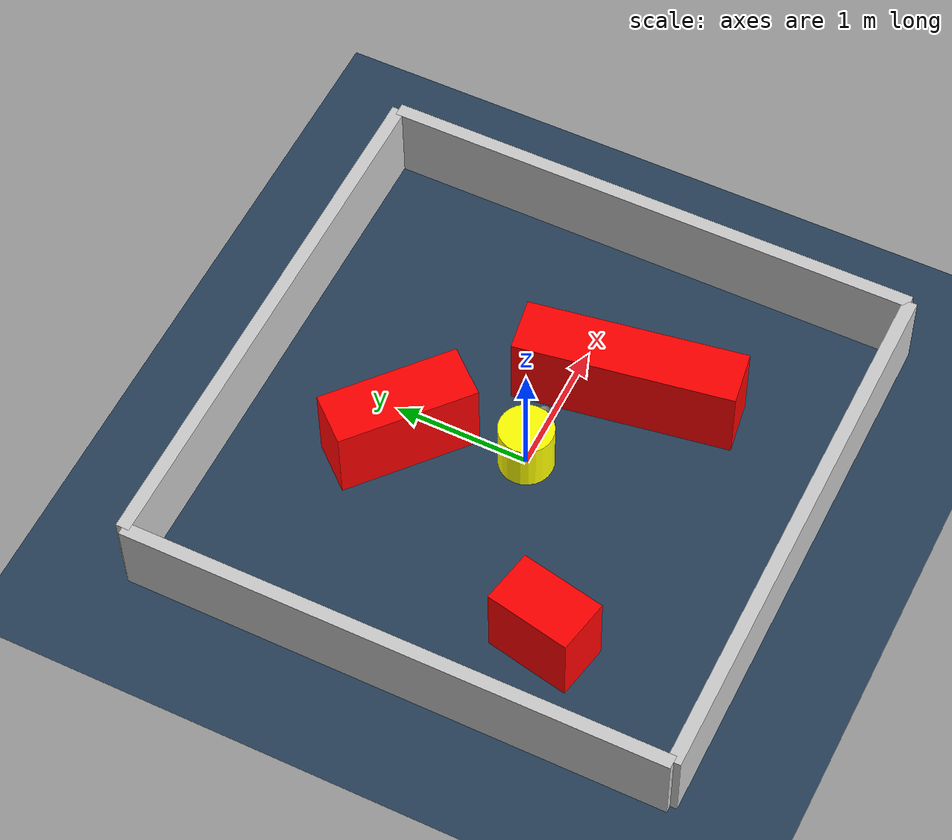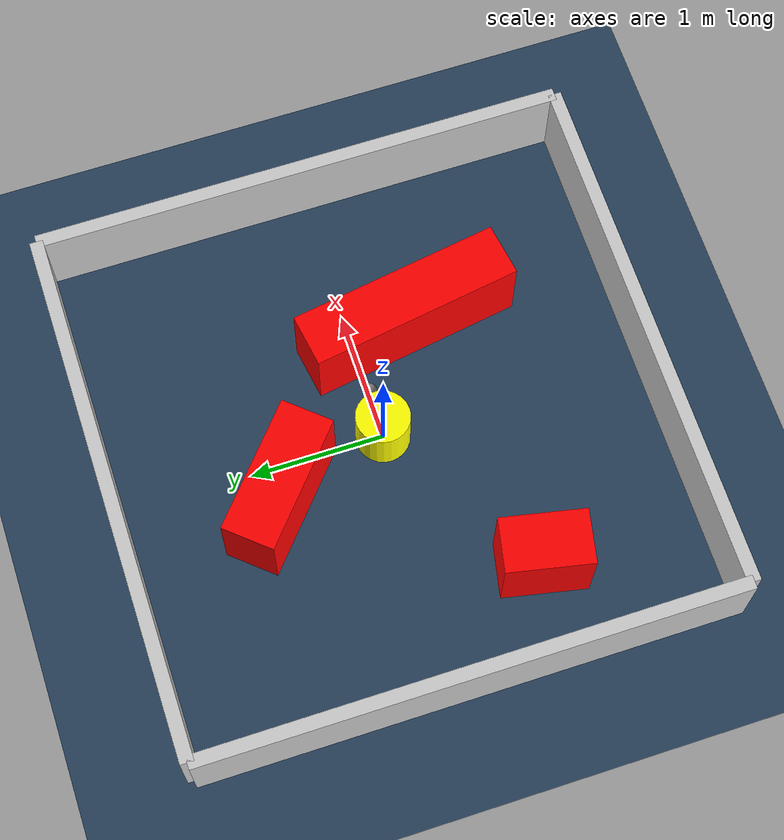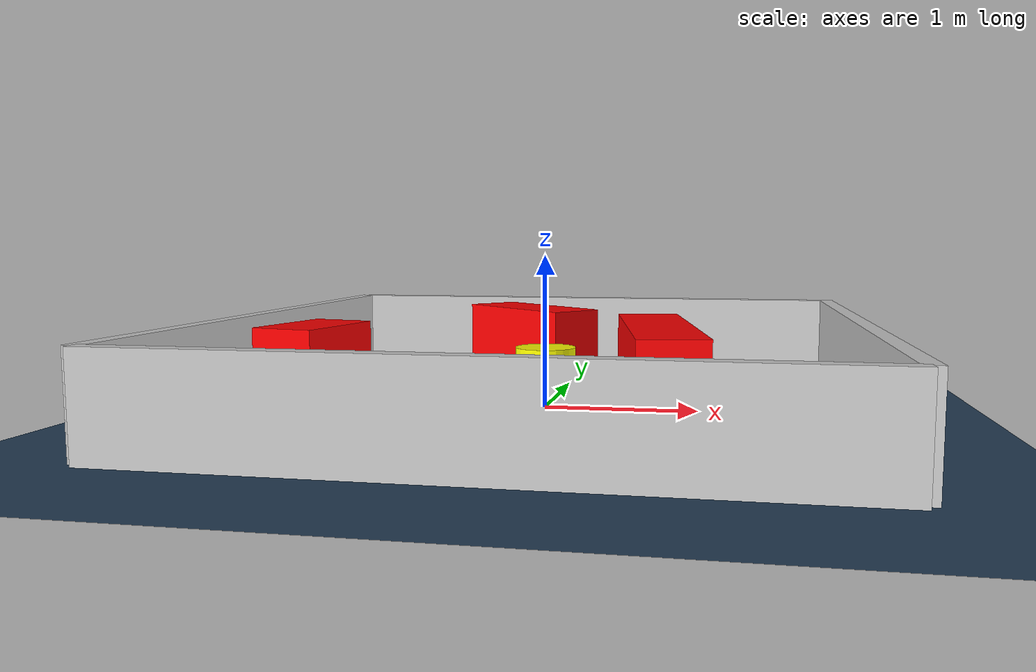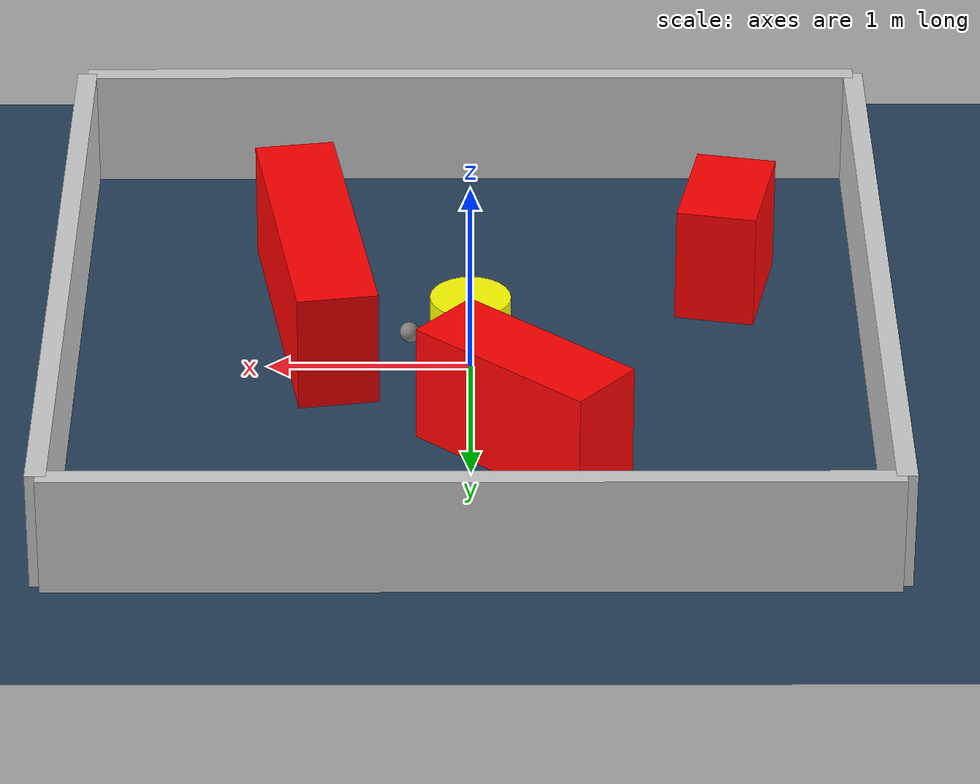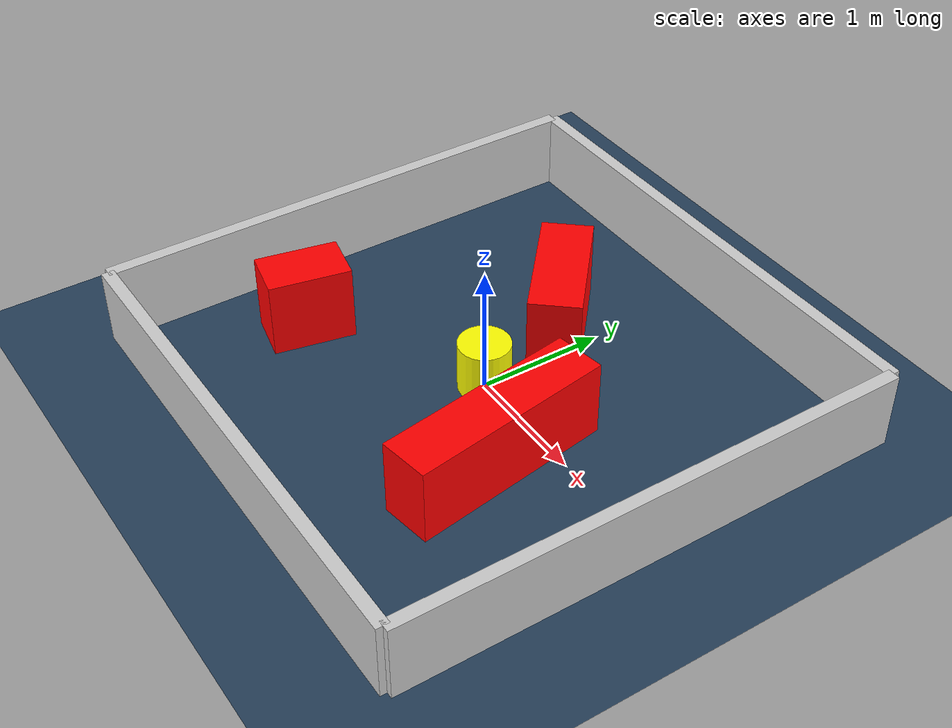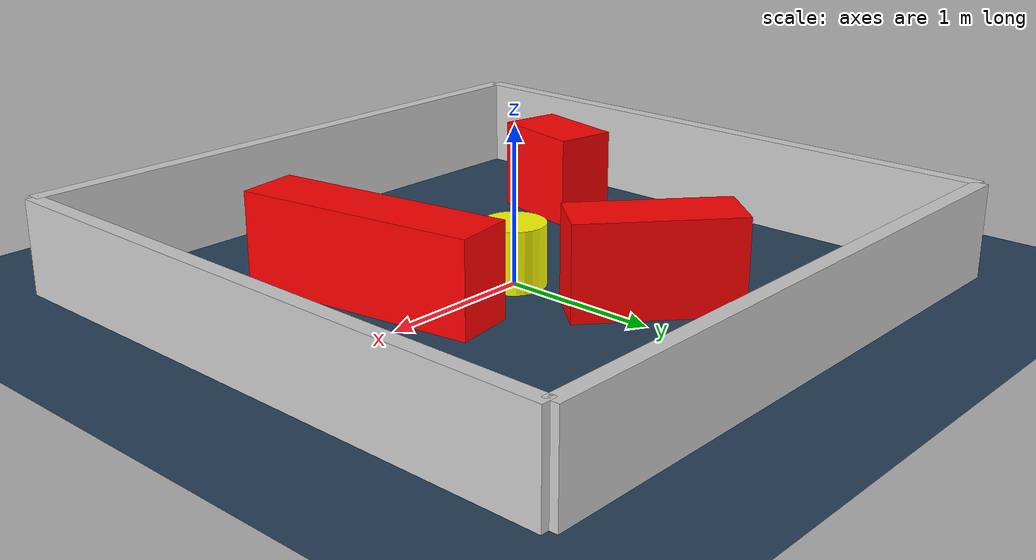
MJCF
<?xml version="1.0" ?>
<mujoco model="generated_environment">
  <option timestep="0.01" integrator="RK4" cone="elliptic"/>
  <default>
    <geom density="1"/>
  </default>
  <asset>
    <texture builtin="gradient" height="3072" rgb1="0.3 0.5 0.7" rgb2="0 0 0" type="skybox" width="512"/>
    <texture builtin="checker" height="300" mark="edge" markrgb="0.8 0.8 0.8" name="groundplane" rgb1="0.2 0.3 0.4" rgb2="0.1 0.2 0.3" type="2d" width="300"/>
    <material name="groundplane" reflectance="0.2" texrepeat="5 5" texture="groundplane" texuniform="true"/>
    <material name="robot" rgba="0.0 1.0 0.0 1"/>
  </asset>
  <worldbody>
    <light dir="0 0 -1" directional="true" pos="0 0 1.5"/>
    <geom condim="4" friction="1.0 0.005 0.001" material="groundplane" name="floor" size="0 0 0.05" type="plane"/>
    <body name="walls">
      <geom name="wall_1" condim="4" pos="-2.0 0.0 0.3" rgba="0.800000011920929 0.800000011920929 0.800000011920929 1.0" size="0.05 2.0 0.3" type="box"/>
      <geom name="wall_2" condim="4" pos="2.0 0.0 0.3" rgba="0.800000011920929 0.800000011920929 0.800000011920929 1.0" size="0.05 2.0 0.3" type="box"/>
      <geom name="wall_3" condim="4" pos="0.0 -2.0 0.3" rgba="0.800000011920929 0.800000011920929 0.800000011920929 1.0" size="2.0 0.05 0.3" type="box"/>
      <geom name="wall_4" condim="4" pos="0.0 2.0 0.3" rgba="0.800000011920929 0.800000011920929 0.800000011920929 1.0" size="2.0 0.05 0.3" type="box"/>
    </body>
    <body name="robot">
      <joint name="joint_x" type="slide" pos="0 0 0" axis="1 0 0"/>
      <joint name="joint_y" type="slide" pos="0 0 0" axis="0 1 0"/>
      <geom name="robot" type="sphere" pos="0.3 0.0 0.2" size="0.05" mass="5." friction="1.0 0.005 0.0001" condim="4" rgba="0.5 0.5 0.5 1.0"/>
      <site name="sensor_ball"/>
    </body>
    <body name="obstacle_movable_1">
      <geom name="obstacle_movable_1" condim="4" pos="0.0 0.0 0.2" euler="0 0 0.0" friction="1.0 0.005 0.001" rgba="1.0 1.0 0.0 1.0" size="0.2 0.2 0.0" type="cylinder" mass="0.1"/>
      <joint type="free"/>
    </body>
    <body name="obstacle_2_static">
      <geom name="obstacle_2_static" condim="4" pos="-1.2889120364387616 -0.7605956469442923 0.3" euler="0 0 78.3743164880413" friction="1.0 0.005 0.001" rgba="1 0 0 1" size="0.31744457056897524 0.2 0.3" type="box"/>
    </body>
    <body name="obstacle_3_static">
      <geom name="obstacle_3_static" condim="4" pos="0.770709650076312 -0.4219983527881146 0.3" euler="0 0 279.0822919958913" friction="1.0 0.005 0.001" rgba="1 0 0 1" size="0.7989703167000499 0.2 0.3" type="box"/>
    </body>
    <body name="obstacle_4_static">
      <geom name="obstacle_4_static" condim="4" pos="-0.25553356326803445 0.8499785238324262 0.3" euler="0 0 319.0605894783077" friction="1.0 0.005 0.001" rgba="1 0 0 1" size="0.5144173852557461 0.2 0.3" type="box"/>
    </body>
  </worldbody>
  <actuator>
    <motor name="actuator_x" joint="joint_x" gear="1" ctrlrange="-1 1"/>
    <motor name="actuator_y" joint="joint_y" gear="1" ctrlrange="-1 1"/>
  </actuator>
</mujoco>
